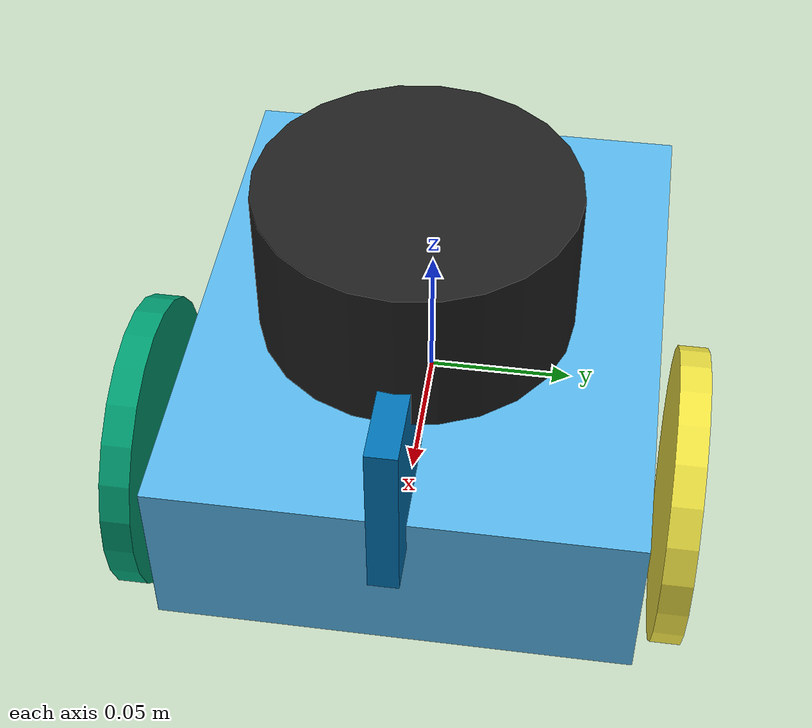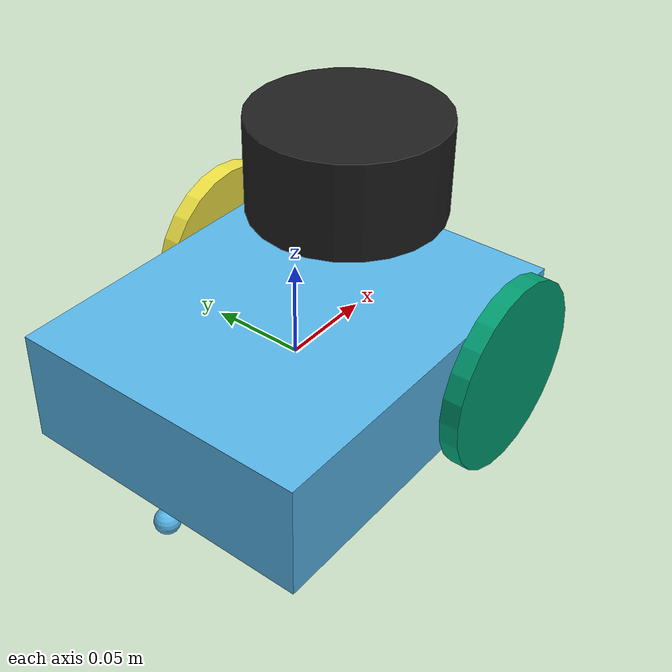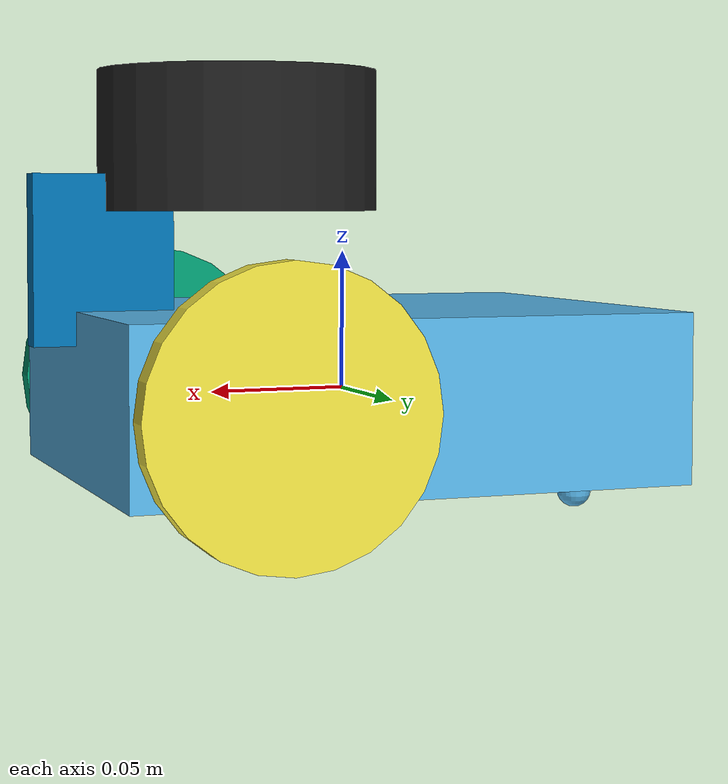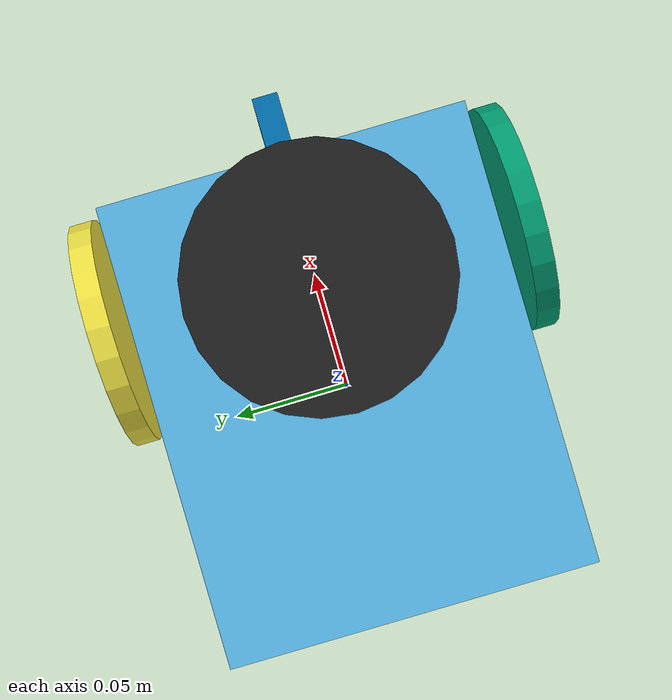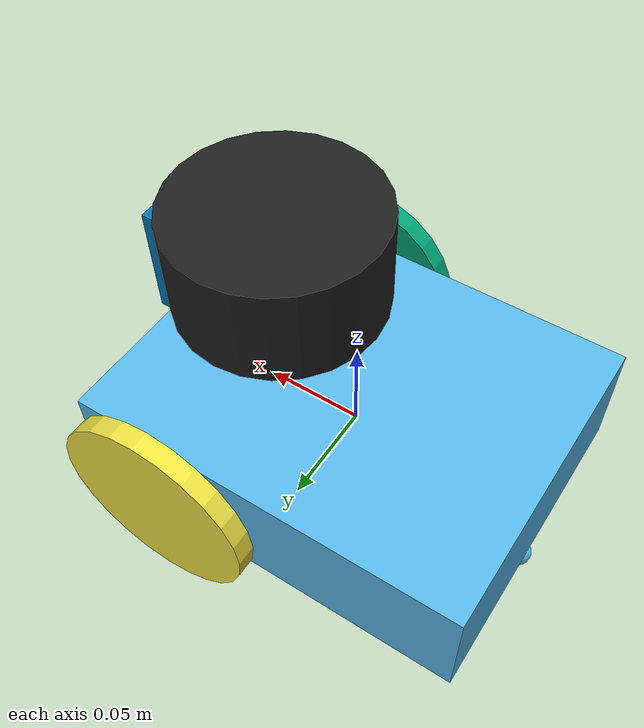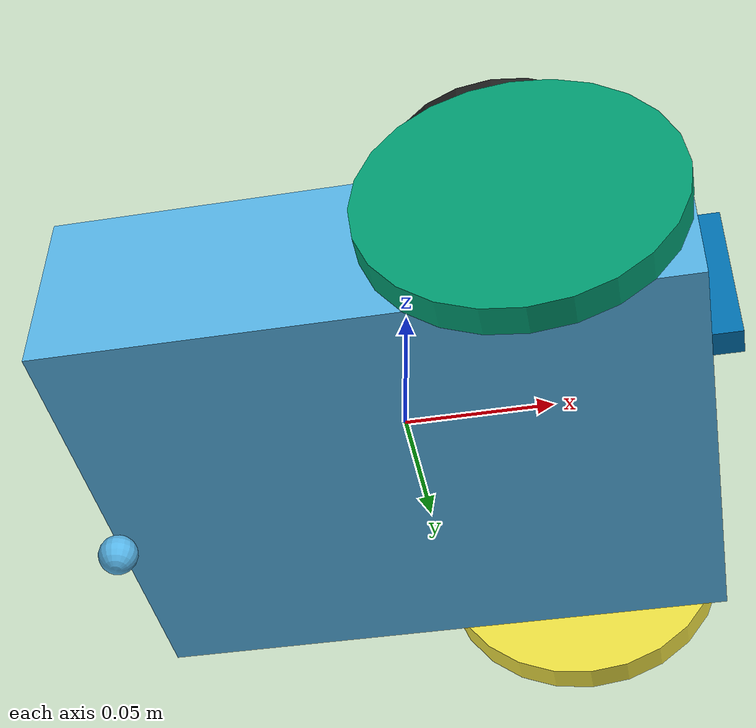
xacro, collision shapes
<?xml version="1.0" ?>
<!-- PuzzleBot differential drive -->
<robot name="puzzlebot" xmlns:xacro="http://www.ros.org/wiki/xacro">

<!-- files for gazebo costumization -->
<xacro:include filename="$(find robotRangers__autonomousNavigation_puzzleBot)/urdf/materials.xacro" />
<xacro:include filename="$(find robotRangers__autonomousNavigation_puzzleBot)/urdf/parameters.xacro" />
<xacro:include filename="$(find robotRangers__autonomousNavigation_puzzleBot)/urdf/puzzlebot.gazebo" />
<xacro:include filename="$(find robotRangers__autonomousNavigation_puzzleBot)/urdf/macros.xacro" />

<!-- Dummy link to fiz robot chassis -->
  <link name="base_link">
    <pose>0 0 0 0 0 0</pose>
  </link>

  <joint name="base_link_to_chassis" type="fixed">
	   <parent link="base_link"/>
	   <child link="chassis"/>
  </joint>

  <link name="chassis">
    <pose>0 0 0 0 0 0</pose>
    <visual>

       <!-- with mesh  -->
      <origin xyz="0 0 0" rpy="${PI/2} 0 ${PI/2}"/>
          <geometry>
          	 <mesh filename="file://${mesh_chassis}"/>
          </geometry>
    </visual>

    <collision name="collision_chassis">
    	<origin rpy="0 0 0" xyz="0 0 0"/>
          <geometry>
            	 <box size="${chassisX} ${chassisY} ${chassisZ}"/>
          </geometry>
    </collision>
    <inertial>
      <mass value="${chassisMass}"/>
      <xacro:box_inertia m="${chassisMass}" x="${chassisX}" y="${chassisY}" z="${chassisZ}" />
    </inertial>

   <!-- agregar caster wheel en frame -->
    <collision>
	    <origin xyz="-0.095 0 -0.0425" rpy="0 0 0"/>
		  <geometry>
		     <sphere radius="${casterRadius}"/>
		  </geometry>
		        <surface>
	      <friction>
	         <ode>
	          <slip1>0.0</slip1>
	          <slip2>0.0</slip2>
	         </ode>
	      </friction>
      </surface>
	  </collision>

	  <visual>
      <origin xyz="-0.095 0 -0.0425" rpy="0 0 0"/>
          <geometry>
          	   <sphere radius="${casterRadius}"/>
          </geometry>
    </visual>

  </link>

 <!--RIGHT WHEEL -->
	<link name="right_wheel">
	  <visual>
	  	<origin xyz="0 0 0" rpy="-${PI/2} 0 0" />
	    <geometry>
	      <!-- with mesh-->
	      	<mesh filename="file://${mesh_wheel}"/>
	    </geometry>
	  </visual>

	  <collision>
		  <origin xyz="0 0 0 " rpy="-${PI/2} 0 0"/>
			  <geometry>
			     <cylinder length="${wheelHeight}" radius="${wheelRadius}" />
			  </geometry>
	  </collision>

	  <inertial>
		  <mass value="${wheelMass}"/>
		  <origin xyz="0 0 0" rpy="${PI/2} 0 0"/>
		  <xacro:wheel_inertia r="${wheelRadius}" l="${wheelHeight}" m="${wheelMass}"/>
	  </inertial>

	</link>

<!-- LEFT WHEEL -->
	<link name="left_wheel">
	  <visual>
	    <geometry>
        <!-- with mesh-->
	      	<mesh filename="file://${mesh_wheel}"/>
	    </geometry>
	    <origin xyz="0 0 0" rpy="${PI/2} 0 0" />
	  </visual>

	  <collision>
		  <origin xyz="0 0 0" rpy="${PI/2} 0 0" />
		  <geometry>
		     <cylinder length="${wheelHeight}" radius="${wheelRadius}"/>
		  </geometry>
	  </collision>

	  <inertial>
		  <mass value="${wheelMass}"/>
		  <origin xyz="0 0 0" rpy="${PI/2} 0 0"/>
		  <xacro:wheel_inertia r="${wheelRadius}" l="${wheelHeight}" m="${wheelMass}" />
	  </inertial>
	</link>

	 <!-- CAMERA-->
	 <link name="camera">
		    <inertial>
		    	    <origin rpy="0 0 0" xyz="0 0 0"/>
		          <mass value="0.007"/>
		          <inertia ixx="0.166667" ixy="0" ixz="0" iyy="0.166667" iyz="0" izz="0.166667"/>
		          <!-- ad camera inertia -->
		    </inertial>

		    <collision name="collision_chassis">
		    	    <origin rpy="0 0 0" xyz="0 0 0"/>
		          <geometry>
		               <box size="0.05 0.01 0.06" />
		          </geometry>
		    </collision>

		    <visual>

		         <!-- with mesh-->
		          <origin rpy="${PI/2} 0 ${PI/2}" xyz="0 0 0"/>
		          <geometry>
		          	<mesh filename="file://${mesh_camera}"/>
		          </geometry>
		    </visual>
  </link>

<!-- JOINTS  -->

  <joint name="base_to_right_w" type="continuous">
	  <parent link="chassis" />
	  <child link="right_wheel" />
	  <origin xyz="0.05 -0.09 0.0" />
		<axis xyz="0 1 0" rpy="0 0 0" />
	</joint>

	<joint name="base_to_left_w" type="continuous">
	  <parent link="chassis" />
	  <child link="left_wheel" />
	  <origin xyz="0.05 0.09 0" />
	  <axis xyz="0 1 0" rpy="0 0 0" />
	</joint>

<joint name="camera_to_base" type="fixed">
	  <parent link="chassis" />
	  <child link="camera" />
	  <origin xyz="0.09 0 0.048" />
  </joint>

<!-- TRANSMISSIONS (For a more complex model and it represents actuator attributes) -->
<transmission name="right_wheel_trans">
    <type>transmission_interface/SimpleTransmission</type>
    <joint name="base_to_right_w">
    	<hardwareInterface>hardware_interface/EffortJointInterface</hardwareInterface>
    </joint>
    <actuator name="right_wheel_motor">
      <mechanicalReduction>34</mechanicalReduction>
       <hardwareInterface>hardware_interface/EffortJointInterface</hardwareInterface>
    </actuator>
  </transmission>

<transmission name="left_wheel_trans">
    <type>transmission_interface/SimpleTransmission</type>
    <joint name="base_to_left_w">
    	<hardwareInterface>hardware_interface/EffortJointInterface</hardwareInterface>
    </joint>
    <actuator name="left_wheel_motor">
      <mechanicalReduction>34</mechanicalReduction>
      <hardwareInterface>hardware_interface/EffortJointInterface</hardwareInterface>
    </actuator>
</transmission>

<!-- lidar link -->
<link name="base_laser_link">
    <inertial>
    <origin rpy="0 0 0" xyz="0 0 0"/>
        <mass value="0.007"/>
        <inertia ixx="0.166667" ixy="0" ixz="0" iyy="0.166667" iyz="0" izz="0.166667"/>

    </inertial>

    <visual>
      <origin xyz="0 0 0" rpy="0 0 0" />
      <geometry>
        <cylinder radius="0.05" length="0.05"/>
      </geometry>
    </visual>

    <collision>
      <origin xyz="0 0 0" rpy="0 0 0"/>
      <geometry>
        <cylinder radius="0.05" length="0.05"/>
      </geometry>
    </collision>
</link>
<gazebo reference="base_laser_link"> <!--Color for the link -->
    <material>Gazebo/Black</material>
</gazebo>

<!-- joint to attach the laser to the chassis -->
<joint name="joint_base_laser_link" type="fixed">
	<origin xyz="0.04 0 0.09" rpy="0 0.0 0"/>
	<parent link="chassis"/>
	<child link="base_laser_link"/>
</joint>

<!-- plugin for the laser -->
<gazebo reference="base_laser_link">
    <sensor type="ray" name="head_rplidar">
        <pose>0 0 0 0 0 0</pose>
        <visualize>false</visualize>
        <update_rate>10</update_rate><!--10 hz as the RP lidar-->
        <ray>
            <scan>
                <horizontal>
                    <samples>1440</samples>
                    <resolution>1</resolution>
                    <min_angle>-3.141596</min_angle>
                    <max_angle>3.141596</max_angle>
                </horizontal>
            </scan>
            <range>
                <min>0.15</min>
                <max>8.0</max>
                <resolution>0.01</resolution>
            </range>
            <noise>
                <type>gaussian</type>
                <mean>0.0</mean>
                <stddev>0.01</stddev>
            </noise>
        </ray>
        <plugin name="gazebo_ros_head_hokuyo_controller" filename="libgazebo_ros_laser.so">
            <topicName>/base_scan</topicName>
            <frameName>base_laser_link</frameName>
        </plugin>
    </sensor>
</gazebo>

</robot>

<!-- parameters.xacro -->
<robot xmlns:xacro="http://www.ros.org/wiki/xacro">

<!--parameters for gazebo properties-->
<xacro:property name="PI" value="3.1415926535897931"/>

<xacro:property name="chassisX" value="0.2"/>
<xacro:property name="chassisY" value="0.16"/>
<xacro:property name="chassisZ" value="0.06"/>
<xacro:property name="chassisMass" value="0.710"/>

<xacro:property name="casterRadius" value="0.0065"/>
<xacro:property name="casterMass" value="0.012"/>

<xacro:property name="wheelHeight" value="0.01"/>
<xacro:property name="wheelRadius" value="0.05"/>
<xacro:property name="wheelPos" value="0.05"/>
<xacro:property name="wheelDistance" value="0.08"/>
<xacro:property name="wheelMass" value="0.03"/>

<xacro:property name="cameraSize" value="0.07"/>
<xacro:property name="cameraMass" value="0.018"/>
<xacro:property name="cameraX" value="0.02"/>
<xacro:property name="cameraY" value="0.04"/>
<xacro:property name="cameraZ" value="0.06"/>

<xacro:property name="mesh_chassis"  value="$(find robotRangers__autonomousNavigation_puzzleBot)/meshes/chassis.stl" />
<xacro:property name="mesh_wheel"  value="$(find robotRangers__autonomousNavigation_puzzleBot)/meshes/wheel.stl" />
<xacro:property name="mesh_camera"  value="$(find robotRangers__autonomousNavigation_puzzleBot)/meshes/camera.stl" />

</robot>
